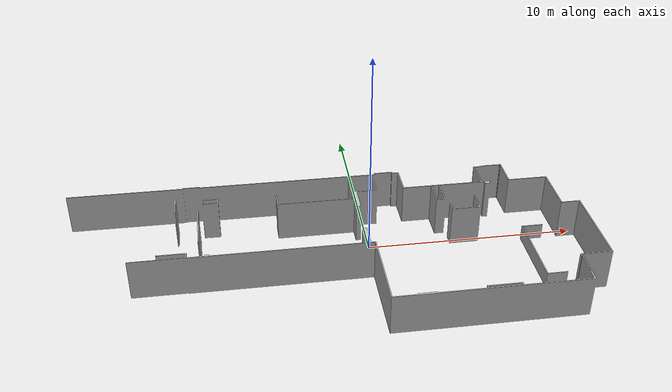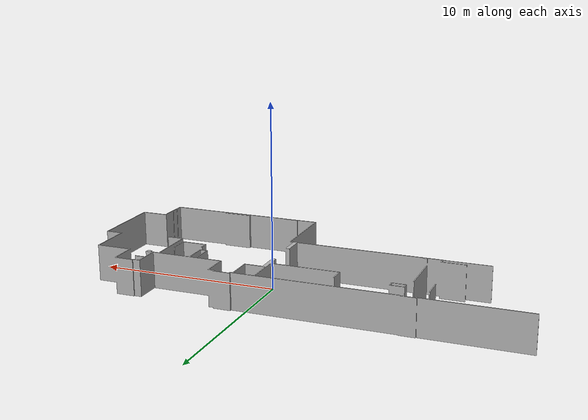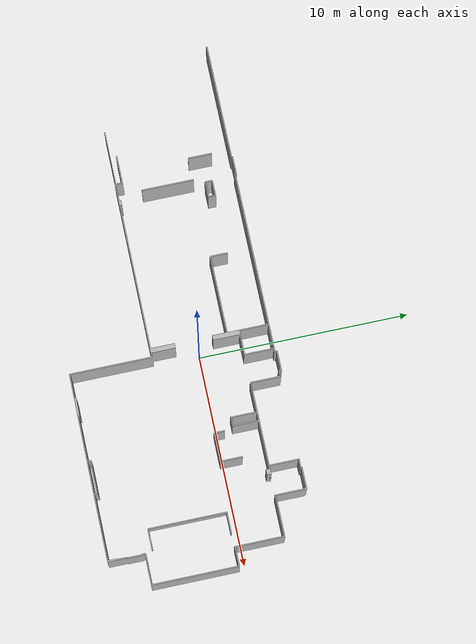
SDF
<?xml version="1.0" ?>
<sdf version="1.6">
  <model name="move_scenario_2/walls">
    <static>true</static>
    <link name="1">
      <collision name="1">
        <geometry>
          <mesh>
            <uri>model://move_scenario_1/walls/shape/heightmap.stl</uri>
          </mesh>
        </geometry>
      </collision>
      <visual name="1">
        <geometry>
          <mesh>
            <uri>model://move_scenario_1/walls/shape/heightmap.stl</uri>
          </mesh>
        </geometry>
      </visual>
      <pose>0 0 0 0 0 0</pose>
    </link>
  </model>
</sdf>
